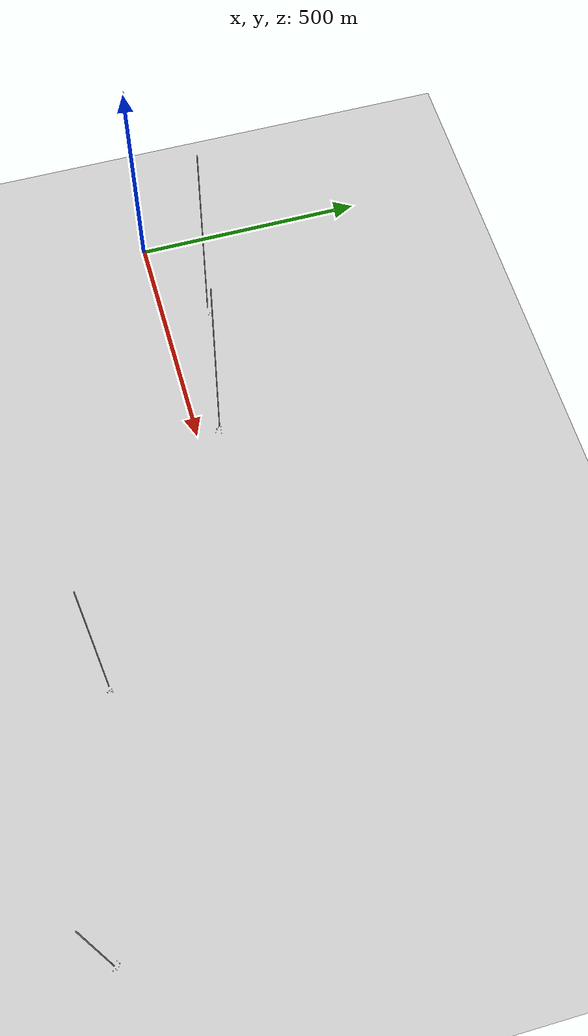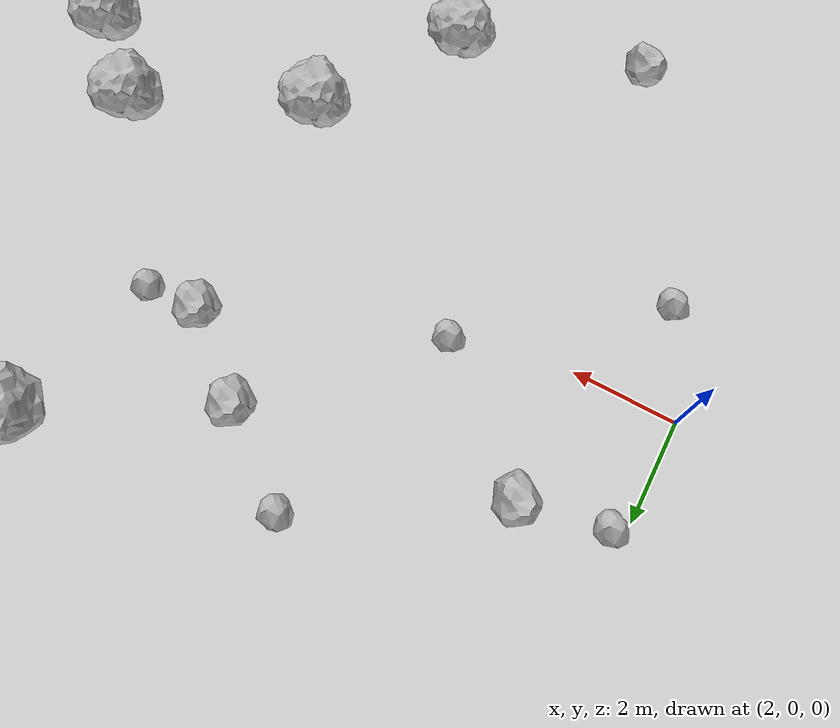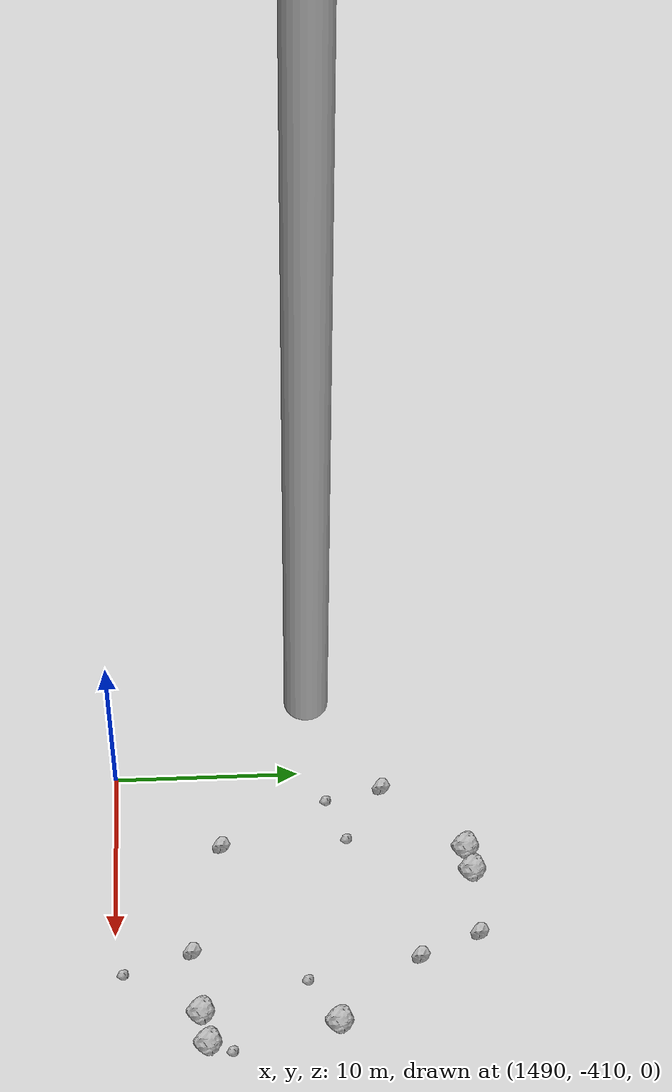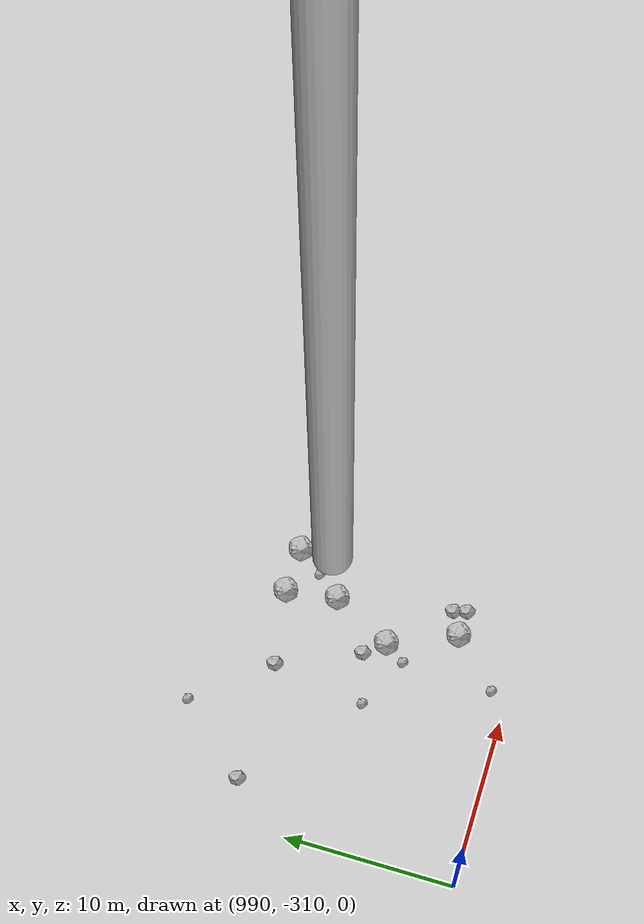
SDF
<?xml version="1.0" ?>
<sdf version="1.6">
  <world name="default">

    <include>
      <uri>model://custom_ground</uri>
    </include>

    <include>
      <uri>model://sun</uri>
    </include>

    <spherical_coordinates>
      <surface_model>EARTH_WGS84</surface_model>
      <latitude_deg>38.161479</latitude_deg>
      <longitude_deg>-122.454630</longitude_deg>
      <elevation>488.0</elevation>
      <heading_deg>90</heading_deg>
    </spherical_coordinates>

    <model name="rock1_0_0">
      <include>
        <uri>model://rock1</uri>
        <pose>14.649174730981994 -0.9612068865790739 0.5 0 0 0</pose>
      </include>
    </model>
    <model name="rock1_0_1">
      <include>
        <uri>model://rock1</uri>
        <pose>11.161924172158308 -2.698936589038274 0.5 0 0 0</pose>
      </include>
    </model>
    <model name="rock1_0_2">
      <include>
        <uri>model://rock1</uri>
        <pose>9.364284953476034 -5.753385893642351 0.5 0 0 0</pose>
      </include>
    </model>
    <model name="rock1_0_3">
      <include>
        <uri>model://rock1</uri>
        <pose>12.493265476479165 5.578333016377018 0.5 0 0 0</pose>
      </include>
    </model>
    <model name="rock1_0_4">
      <include>
        <uri>model://rock1</uri>
        <pose>16.30672130447939 -2.443386434182983 0.5 0 0 0</pose>
      </include>
    </model>
    <model name="rock2_0_0">
      <include>
        <uri>model://rock2</uri>
        <pose>10.64722388561977 2.303658003536281 0.3 0 0 0</pose>
      </include>
    </model>
    <model name="rock2_0_1">
      <include>
        <uri>model://rock2</uri>
        <pose>9.063024051435804 3.5482633745843746 0.3 0 0 0</pose>
      </include>
    </model>
    <model name="rock2_0_2">
      <include>
        <uri>model://rock2</uri>
        <pose>5.531554656393318 -6.821272492328092 0.3 0 0 0</pose>
      </include>
    </model>
    <model name="rock2_0_3">
      <include>
        <uri>model://rock2</uri>
        <pose>3.8991850550442697 2.6390535095382504 0.3 0 0 0</pose>
      </include>
    </model>
    <model name="rock2_0_4">
      <include>
        <uri>model://rock2</uri>
        <pose>18.301840933862707 -3.660854343413275 0.3 0 0 0</pose>
      </include>
    </model>
    <model name="rock3_0_0">
      <include>
        <uri>model://rock3</uri>
        <pose>11.693326036402143 2.356896874571664 0.2 0 0 0</pose>
      </include>
    </model>
    <model name="rock3_0_1">
      <include>
        <uri>model://rock3</uri>
        <pose>6.260220329683996 0.5171949691007036 0.2 0 0 0</pose>
      </include>
    </model>
    <model name="rock3_0_2">
      <include>
        <uri>model://rock3</uri>
        <pose>2.261919616603565 2.250290992256714 0.2 0 0 0</pose>
      </include>
    </model>
    <model name="rock3_0_3">
      <include>
        <uri>model://rock3</uri>
        <pose>2.901522053202943 -2.066132278670965 0.2 0 0 0</pose>
      </include>
    </model>
    <model name="rock3_0_4">
      <include>
        <uri>model://rock3</uri>
        <pose>7.319387813075295 4.758528007018658 0.2 0 0 0</pose>
      </include>
    </model>
    <model name="rock1_1_0">
      <include>
        <uri>model://rock1</uri>
        <pose>192.43469856723428 101.622006729614 0.5 0 0 0</pose>
      </include>
    </model>
    <model name="rock1_1_1">
      <include>
        <uri>model://rock1</uri>
        <pose>203.18685472188267 103.78902105033882 0.5 0 0 0</pose>
      </include>
    </model>
    <model name="rock1_1_2">
      <include>
        <uri>model://rock1</uri>
        <pose>196.10633610306076 101.85171584886919 0.5 0 0 0</pose>
      </include>
    </model>
    <model name="rock1_1_3">
      <include>
        <uri>model://rock1</uri>
        <pose>207.3071622777078 97.54422364865925 0.5 0 0 0</pose>
      </include>
    </model>
    <model name="rock1_1_4">
      <include>
        <uri>model://rock1</uri>
        <pose>206.52605274641056 100.29994806672953 0.5 0 0 0</pose>
      </include>
    </model>
    <model name="rock2_1_0">
      <include>
        <uri>model://rock2</uri>
        <pose>205.3740721465442 104.94843220644128 0.3 0 0 0</pose>
      </include>
    </model>
    <model name="rock2_1_1">
      <include>
        <uri>model://rock2</uri>
        <pose>193.2851062236733 99.15090281036782 0.3 0 0 0</pose>
      </include>
    </model>
    <model name="rock2_1_2">
      <include>
        <uri>model://rock2</uri>
        <pose>190.66168002465758 96.55615390097691 0.3 0 0 0</pose>
      </include>
    </model>
    <model name="rock2_1_3">
      <include>
        <uri>model://rock2</uri>
        <pose>199.65960691567335 94.84247318873315 0.3 0 0 0</pose>
      </include>
    </model>
    <model name="rock2_1_4">
      <include>
        <uri>model://rock2</uri>
        <pose>196.07496062781829 102.33108642294175 0.3 0 0 0</pose>
      </include>
    </model>
    <model name="rock3_1_0">
      <include>
        <uri>model://rock3</uri>
        <pose>202.12940686935207 101.99891401077576 0.2 0 0 0</pose>
      </include>
    </model>
    <model name="rock3_1_1">
      <include>
        <uri>model://rock3</uri>
        <pose>195.89435949818068 95.50713009922512 0.2 0 0 0</pose>
      </include>
    </model>
    <model name="rock3_1_2">
      <include>
        <uri>model://rock3</uri>
        <pose>204.7840520899351 106.1333944461759 0.2 0 0 0</pose>
      </include>
    </model>
    <model name="rock3_1_3">
      <include>
        <uri>model://rock3</uri>
        <pose>205.78139655052044 105.95153145068497 0.2 0 0 0</pose>
      </include>
    </model>
    <model name="rock3_1_4">
      <include>
        <uri>model://rock3</uri>
        <pose>209.03363391479067 97.55087043690665 0.2 0 0 0</pose>
      </include>
    </model>
    <model name="rock1_2_0">
      <include>
        <uri>model://rock1</uri>
        <pose>494.5233323102478 44.85859924859707 0.5 0 0 0</pose>
      </include>
    </model>
    <model name="rock1_2_1">
      <include>
        <uri>model://rock1</uri>
        <pose>499.86315501076916 53.51472303242278 0.5 0 0 0</pose>
      </include>
    </model>
    <model name="rock1_2_2">
      <include>
        <uri>model://rock1</uri>
        <pose>498.3973775791541 45.03318385979963 0.5 0 0 0</pose>
      </include>
    </model>
    <model name="rock1_2_3">
      <include>
        <uri>model://rock1</uri>
        <pose>503.517699926973 40.73029702583671 0.5 0 0 0</pose>
      </include>
    </model>
    <model name="rock1_2_4">
      <include>
        <uri>model://rock1</uri>
        <pose>492.6889603640768 49.046817349206016 0.5 0 0 0</pose>
      </include>
    </model>
    <model name="rock2_2_0">
      <include>
        <uri>model://rock2</uri>
        <pose>507.7545583851725 51.89277335222158 0.3 0 0 0</pose>
      </include>
    </model>
    <model name="rock2_2_1">
      <include>
        <uri>model://rock2</uri>
        <pose>492.1246906250101 54.63696308032911 0.3 0 0 0</pose>
      </include>
    </model>
    <model name="rock2_2_2">
      <include>
        <uri>model://rock2</uri>
        <pose>498.26901728148033 52.35406964916785 0.3 0 0 0</pose>
      </include>
    </model>
    <model name="rock2_2_3">
      <include>
        <uri>model://rock2</uri>
        <pose>500.9054702833107 57.47581161487301 0.3 0 0 0</pose>
      </include>
    </model>
    <model name="rock2_2_4">
      <include>
        <uri>model://rock2</uri>
        <pose>506.72635223579994 53.16786451570586 0.3 0 0 0</pose>
      </include>
    </model>
    <model name="rock3_2_0">
      <include>
        <uri>model://rock3</uri>
        <pose>494.7041009180329 57.10919460621784 0.2 0 0 0</pose>
      </include>
    </model>
    <model name="rock3_2_1">
      <include>
        <uri>model://rock3</uri>
        <pose>498.8412082134218 45.6870823164912 0.2 0 0 0</pose>
      </include>
    </model>
    <model name="rock3_2_2">
      <include>
        <uri>model://rock3</uri>
        <pose>494.8902200773064 54.38711686941189 0.2 0 0 0</pose>
      </include>
    </model>
    <model name="rock3_2_3">
      <include>
        <uri>model://rock3</uri>
        <pose>496.1443102151359 50.56708634318089 0.2 0 0 0</pose>
      </include>
    </model>
    <model name="rock3_2_4">
      <include>
        <uri>model://rock3</uri>
        <pose>498.90277110896807 53.71351545082773 0.2 0 0 0</pose>
      </include>
    </model>
    <model name="rock1_3_0">
      <include>
        <uri>model://rock1</uri>
        <pose>1004.6128655902768 -298.8073705984111 0.5 0 0 0</pose>
      </include>
    </model>
    <model name="rock1_3_1">
      <include>
        <uri>model://rock1</uri>
        <pose>1006.9221360133376 -295.86829306271284 0.5 0 0 0</pose>
      </include>
    </model>
    <model name="rock1_3_2">
      <include>
        <uri>model://rock1</uri>
        <pose>1004.1923179854954 -295.769062030517 0.5 0 0 0</pose>
      </include>
    </model>
    <model name="rock1_3_3">
      <include>
        <uri>model://rock1</uri>
        <pose>1004.4051450404344 -306.27290987331514 0.5 0 0 0</pose>
      </include>
    </model>
    <model name="rock1_3_4">
      <include>
        <uri>model://rock1</uri>
        <pose>1002.7342544773055 -302.35715542559393 0.5 0 0 0</pose>
      </include>
    </model>
    <model name="rock2_3_0">
      <include>
        <uri>model://rock2</uri>
        <pose>999.7001437089888 -296.46248584543713 0.3 0 0 0</pose>
      </include>
    </model>
    <model name="rock2_3_1">
      <include>
        <uri>model://rock2</uri>
        <pose>1005.9456632341323 -306.35369809442415 0.3 0 0 0</pose>
      </include>
    </model>
    <model name="rock2_3_2">
      <include>
        <uri>model://rock2</uri>
        <pose>1005.7554794390439 -305.5831247103177 0.3 0 0 0</pose>
      </include>
    </model>
    <model name="rock2_3_3">
      <include>
        <uri>model://rock2</uri>
        <pose>992.5281964724853 -296.43344470716926 0.3 0 0 0</pose>
      </include>
    </model>
    <model name="rock2_3_4">
      <include>
        <uri>model://rock2</uri>
        <pose>1001.773345262064 -301.19346799255936 0.3 0 0 0</pose>
      </include>
    </model>
    <model name="rock3_3_0">
      <include>
        <uri>model://rock3</uri>
        <pose>1005.7338549125506 -297.39081688721893 0.2 0 0 0</pose>
      </include>
    </model>
    <model name="rock3_3_1">
      <include>
        <uri>model://rock3</uri>
        <pose>1001.8782991153748 -303.6055161469604 0.2 0 0 0</pose>
      </include>
    </model>
    <model name="rock3_3_2">
      <include>
        <uri>model://rock3</uri>
        <pose>998.8055974702596 -302.03396282952514 0.2 0 0 0</pose>
      </include>
    </model>
    <model name="rock3_3_3">
      <include>
        <uri>model://rock3</uri>
        <pose>996.2154902995461 -292.2788490887474 0.2 0 0 0</pose>
      </include>
    </model>
    <model name="rock3_3_4">
      <include>
        <uri>model://rock3</uri>
        <pose>1001.6549089875954 -309.0187880231428 0.2 0 0 0</pose>
      </include>
    </model>
    <model name="rock1_4_0">
      <include>
        <uri>model://rock1</uri>
        <pose>1495.4763795833678 -391.1729264604511 0.5 0 0 0</pose>
      </include>
    </model>
    <model name="rock1_4_1">
      <include>
        <uri>model://rock1</uri>
        <pose>1496.9295697485832 -390.9153064738495 0.5 0 0 0</pose>
      </include>
    </model>
    <model name="rock1_4_2">
      <include>
        <uri>model://rock1</uri>
        <pose>1506.7698135687497 -405.26602997932423 0.5 0 0 0</pose>
      </include>
    </model>
    <model name="rock1_4_3">
      <include>
        <uri>model://rock1</uri>
        <pose>1504.972882824576 -405.6043105803691 0.5 0 0 0</pose>
      </include>
    </model>
    <model name="rock1_4_4">
      <include>
        <uri>model://rock1</uri>
        <pose>1505.7969822895095 -398.4949345172939 0.5 0 0 0</pose>
      </include>
    </model>
    <model name="rock2_4_0">
      <include>
        <uri>model://rock2</uri>
        <pose>1491.2533857357234 -395.4408775509525 0.3 0 0 0</pose>
      </include>
    </model>
    <model name="rock2_4_1">
      <include>
        <uri>model://rock2</uri>
        <pose>1501.2546811215686 -405.9807873777451 0.3 0 0 0</pose>
      </include>
    </model>
    <model name="rock2_4_2">
      <include>
        <uri>model://rock2</uri>
        <pose>1500.6994491883406 -390.8208683303977 0.3 0 0 0</pose>
      </include>
    </model>
    <model name="rock2_4_3">
      <include>
        <uri>model://rock2</uri>
        <pose>1501.9936098564033 -394.0196611849739 0.3 0 0 0</pose>
      </include>
    </model>
    <model name="rock2_4_4">
      <include>
        <uri>model://rock2</uri>
        <pose>1494.7113045700355 -404.3122270584531 0.3 0 0 0</pose>
      </include>
    </model>
    <model name="rock3_4_0">
      <include>
        <uri>model://rock3</uri>
        <pose>1503.1504155156824 -400.0005627102892 0.2 0 0 0</pose>
      </include>
    </model>
    <model name="rock3_4_1">
      <include>
        <uri>model://rock3</uri>
        <pose>1491.9499547751782 -398.5475787275685 0.2 0 0 0</pose>
      </include>
    </model>
    <model name="rock3_4_2">
      <include>
        <uri>model://rock3</uri>
        <pose>1494.4917500815834 -397.5418697199905 0.2 0 0 0</pose>
      </include>
    </model>
    <model name="rock3_4_3">
      <include>
        <uri>model://rock3</uri>
        <pose>1507.141393331905 -404.012541960792 0.2 0 0 0</pose>
      </include>
    </model>
    <model name="rock3_4_4">
      <include>
        <uri>model://rock3</uri>
        <pose>1502.4405837132308 -409.62187418049007 0.2 0 0 0</pose>
      </include>
    </model>

    <model name="cylinder_1">
      <static>true</static>
      <link name="link">
        <visual name="visual">
          <geometry>
            <cylinder>
              <radius>1</radius>
              <length>500</length>
            </cylinder>
          </geometry>
        </visual>
      </link>
      <pose>10 0 270 0 0 0</pose>
    </model>

    <model name="cylinder_2">
      <static>true</static>
      <link name="link">
        <visual name="visual">
          <geometry>
            <cylinder>
              <radius>1</radius>
              <length>500</length>
            </cylinder>
          </geometry>
        </visual>
      </link>
      <pose>200 100 270 0 0 0</pose>
    </model>

    <model name="cylinder_3">
      <static>true</static>
      <link name="link">
        <visual name="visual">
          <geometry>
            <cylinder>
              <radius>1</radius>
              <length>500</length>
            </cylinder>
          </geometry>
        </visual>
      </link>
      <pose>500 50 270 0 0 0</pose>
    </model>

    <model name="cylinder_4">
      <static>true</static>
      <link name="link">
        <visual name="visual">
          <geometry>
            <cylinder>
              <radius>1</radius>
              <length>500</length>
            </cylinder>
          </geometry>
        </visual>
      </link>
      <pose>1000 -300 270 0 0 0</pose>
    </model>

    <model name="cylinder_5">
      <static>true</static>
      <link name="link">
        <visual name="visual">
          <geometry>
            <cylinder>
              <radius>1</radius>
              <length>500</length>
            </cylinder>
          </geometry>
        </visual>
      </link>
      <pose>1500 -400 270 0 0 0</pose>
    </model>

  </world>
</sdf>

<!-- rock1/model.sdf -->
<sdf version="1.6">
  <model name="rock1">
    <static>true</static> <!-- Set to true if the model should not move -->
    <pose>0 0 0 0 0 0</pose>

    <!--z offset is 0.5 for full scale-->

    <link name="link">
      <collision name="rock1_collision">
        <geometry>
          <mesh>
            <uri>model://meshes/rock1.dae</uri>
          </mesh>
        </geometry>
      </collision>
      <visual name="rock1_visual">
        <geometry>
          <mesh>
            <uri>model://meshes/rock1.dae</uri>
          </mesh>
        </geometry>
        <material>
          <script>
            <uri>model://materials/scripts/sand_pebbles.material</uri>
            <name>custom_ground/Image</name>
          </script>
        </material>
      </visual>
    </link>
  </model>
</sdf>

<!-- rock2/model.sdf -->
<sdf version="1.6">
  <model name="rock2">
    <static>true</static> <!-- Set to true if the model should not move -->
    <pose>0 0 0 0 0 0</pose>

    <!--z offset is 0.3 for full scale-->

    <link name="link">
      <collision name="rock2_collision">
        <geometry>
          <mesh>
            <uri>model://meshes/rock2.dae</uri>
          </mesh>
        </geometry>
      </collision>
      <visual name="rock2_visual">
        <geometry>
          <mesh>
            <uri>model://meshes/rock2.dae</uri>
          </mesh>
        </geometry>
        <material>
          <script>
            <uri>model://materials/scripts/sand_pebbles.material</uri>
            <name>custom_ground/Image</name>
          </script>
        </material>
      </visual>
    </link>
  </model>
</sdf>

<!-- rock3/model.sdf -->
<sdf version="1.6">
  <model name="rock3">
    <static>true</static> <!-- Set to true if the model should not move -->
    <pose>0 0 0 0 0 0</pose>

    <!--z offset is 0.2 for full scale-->

    <link name="link">
      <collision name="rock3_collision">
        <geometry>
          <mesh>
            <uri>model://meshes/rock3.dae</uri>
          </mesh>
        </geometry>
      </collision>
      <visual name="rock3_visual">
        <geometry>
          <mesh>
            <uri>model://meshes/rock3.dae</uri>
          </mesh>
        </geometry>
        <material>
          <script>
            <uri>model://materials/scripts/sand_pebbles.material</uri>
            <name>custom_ground/Image</name>
          </script>
        </material>
      </visual>
    </link>
  </model>
</sdf>

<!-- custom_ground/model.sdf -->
<sdf version="1.6">
  <model name="custom_ground">
    <static>true</static> <!-- Ground is static and immovable -->
    <link name="ground_link">
      <pose>240 0 0 0 0 0</pose> <!-- Position and orientation relative to the world -->
      <!-- Visual Representation -->
      <visual name="ground_visual">
        <geometry>
          <plane>
            <normal>0 0 1</normal> <!-- Upward facing plane -->
            <size>500 500</size> <!-- Size of the plane -->
          </plane>
        </geometry>
        <material>
          <script>
            <uri>model://materials/scripts/sand_pebbles.material</uri>
            <name>custom_ground/Image</name>
          </script>
        </material>
      </visual>

      <!-- Collision Representation -->
      <collision name="ground_collision">
        <geometry>
          <plane>
            <normal>0 0 1</normal>
            <size>100 100</size>
          </plane>
        </geometry>
      </collision>

    </link>
  </model>
</sdf>
